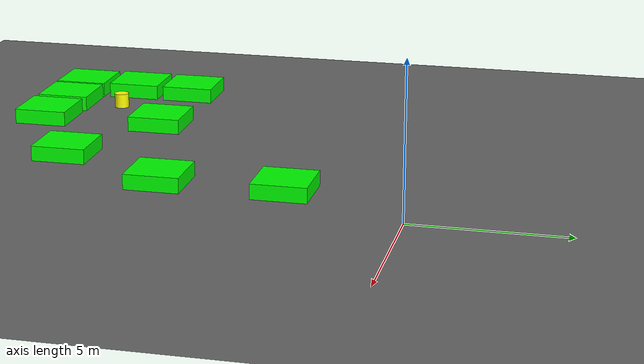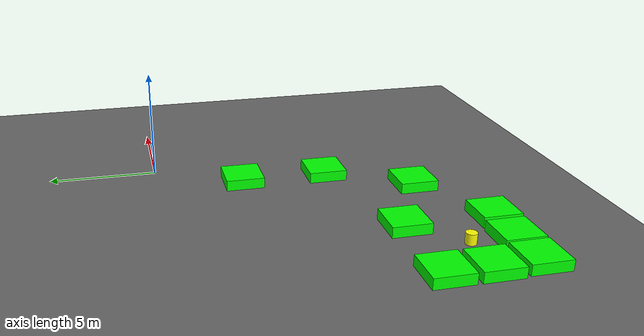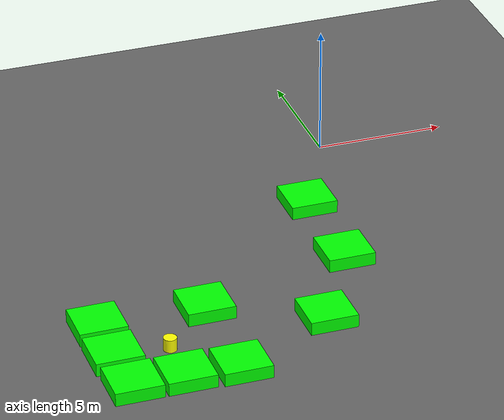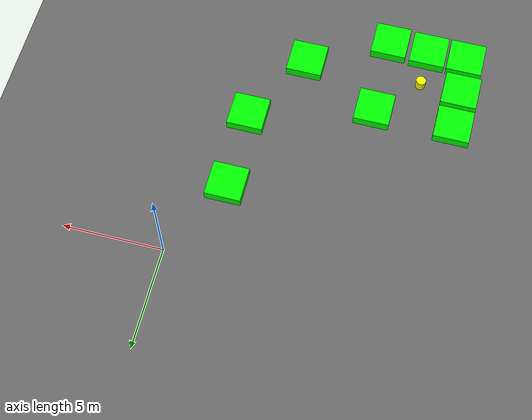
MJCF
<mujoco model="lvl5_corridor_obs10_dlong_depth3_seed1081">
    <compiler angle="degree" coordinate="local" inertiafromgeom="true"/>
    <option integrator="RK4" timestep="0.01"/>

    <asset>
        <texture builtin="gradient" height="100" rgb1="0.6 0.8 1" rgb2="0 0 0" type="skybox" width="100"/>
        <texture name="floor_texture" type="2d" builtin="checker" width="100" height="100" rgb1="0 0 0" rgb2="0.8 0.8 0.8"/>
        <material name="MatPlane" reflectance="0.5" shininess="1" specular="1" texrepeat="10 10" texture="floor_texture"/>
    </asset>

    <!-- Excluding the contact between the agent and the goal, and the agent and the floor -->
    <contact>
        <exclude body1="agent" body2="goal"/>
        <exclude body1 = "agent" body2 = "floor"/>
    </contact>

    <extension>
        <plugin plugin = "mujoco.pid">
            <instance name = "pid1">
                <config key="kp" value="2"/>
                <config key="ki" value="0"/>
                <config key="kd" value="55"/>
            </instance>
        </plugin>
    </extension>

    <worldbody>
        <light cutoff="100" diffuse="1 1 1" dir="-0 0 -1.3" directional="true" exponent="1" pos="0 0 1.3" specular=".1 .1 .1"/>
        <body name="floor" pos="0 0 0">
            <geom name="floor_geom" type="plane" size="20 20 0.1" material="MatPlane"/>
        </body>

                <body name="goal" pos="0.0000 0.0000 0">
            <geom name="goal_geom" type="plane" size="0.5 0.5 1" pos="0 0 0" rgba="1 0 0 1"/>
        </body>

                <body name="agent" pos="-10.0000 -12.0000 0.250">
            <joint name="j1" type="slide" axis ="1 0 0 "/>
            <joint name="j2" type="slide" axis ="0 1 0 "/>
            <geom name="agent_geom" type="cylinder" size="0.25 0.25 0.250" rgba="1 1 0 1"/>
        </body>

        <body name="obstacle1" pos="-2.0051 -4.0403 0.250">  <geom name="obstacle1_geom" type="box" size="0.9000 0.9000 0.250" rgba="0 1 0 1"/></body>
        <body name="obstacle2" pos="-1.9997 -8.0866 0.250">  <geom name="obstacle2_geom" type="box" size="0.9000 0.9000 0.250" rgba="0 1 0 1"/></body>
        <body name="obstacle3" pos="-12.0601 -9.9175 0.250">  <geom name="obstacle3_geom" type="box" size="0.9000 0.9000 0.250" rgba="0 1 0 1"/></body>
        <body name="obstacle4" pos="-8.0334 -9.9163 0.250">  <geom name="obstacle4_geom" type="box" size="0.9000 0.9000 0.250" rgba="0 1 0 1"/></body>
        <body name="obstacle5" pos="-12.0660 -11.9377 0.250">  <geom name="obstacle5_geom" type="box" size="0.9000 0.9000 0.250" rgba="0 1 0 1"/></body>
        <body name="obstacle6" pos="-4.0937 -11.9026 0.250">  <geom name="obstacle6_geom" type="box" size="0.9000 0.9000 0.250" rgba="0 1 0 1"/></body>
        <body name="obstacle7" pos="-11.9762 -13.9448 0.250">  <geom name="obstacle7_geom" type="box" size="0.9000 0.9000 0.250" rgba="0 1 0 1"/></body>
        <body name="obstacle8" pos="-10.0537 -13.9495 0.250">  <geom name="obstacle8_geom" type="box" size="0.9000 0.9000 0.250" rgba="0 1 0 1"/></body>
        <body name="obstacle9" pos="-8.0390 -14.0244 0.250">  <geom name="obstacle9_geom" type="box" size="0.9000 0.9000 0.250" rgba="0 1 0 1"/></body>

    </worldbody>

    <sensor>
<!-- SENSORS -->

        <distance name="dist1" geom1="agent_geom" geom2="obstacle1_geom" cutoff="1.5"/>
        <distance name="dist2" geom1="agent_geom" geom2="obstacle2_geom" cutoff="1.5"/>
        <distance name="dist3" geom1="agent_geom" geom2="obstacle3_geom" cutoff="1.5"/>
        <distance name="dist4" geom1="agent_geom" geom2="obstacle4_geom" cutoff="1.5"/>
        <distance name="dist5" geom1="agent_geom" geom2="obstacle5_geom" cutoff="1.5"/>
        <distance name="dist6" geom1="agent_geom" geom2="obstacle6_geom" cutoff="1.5"/>
        <distance name="dist7" geom1="agent_geom" geom2="obstacle7_geom" cutoff="1.5"/>
        <distance name="dist8" geom1="agent_geom" geom2="obstacle8_geom" cutoff="1.5"/>
        <distance name="dist9" geom1="agent_geom" geom2="obstacle9_geom" cutoff="1.5"/>
</sensor>

    <actuator>
        <plugin joint="j1" plugin="mujoco.pid" instance="pid1" />
        <plugin joint="j2" plugin="mujoco.pid" instance="pid1"/>
    </actuator>
</mujoco>
